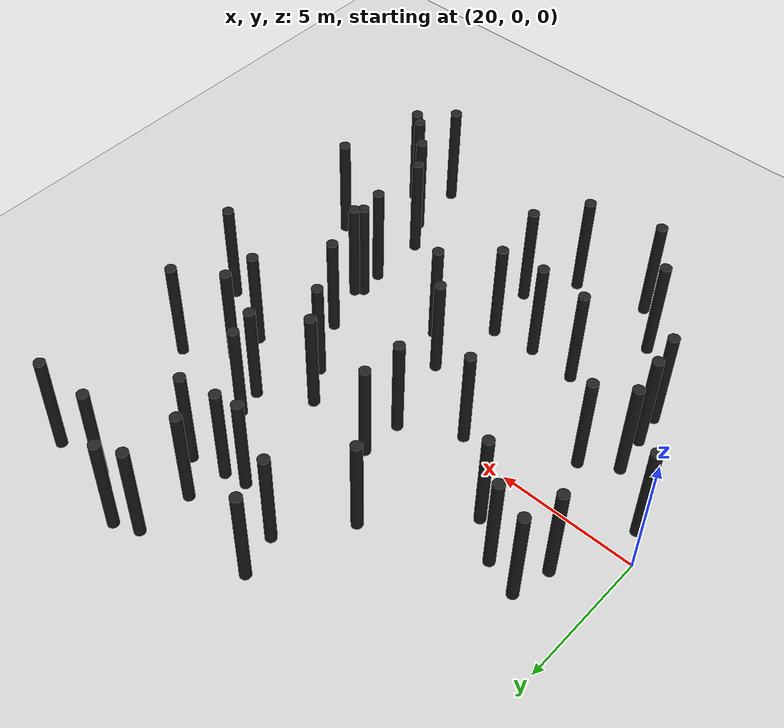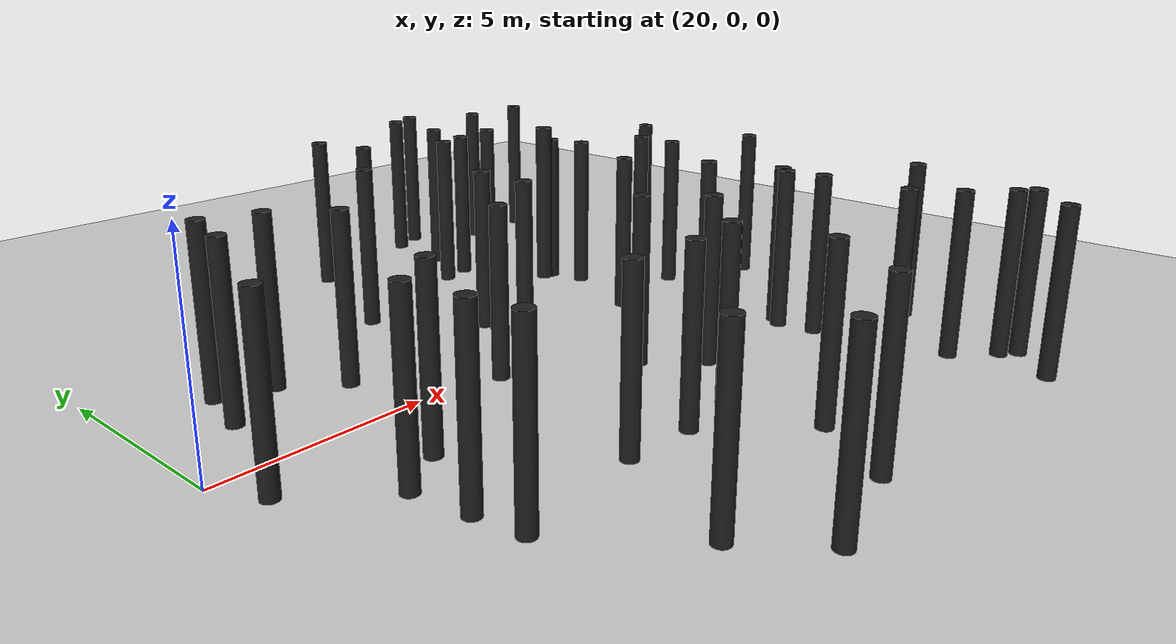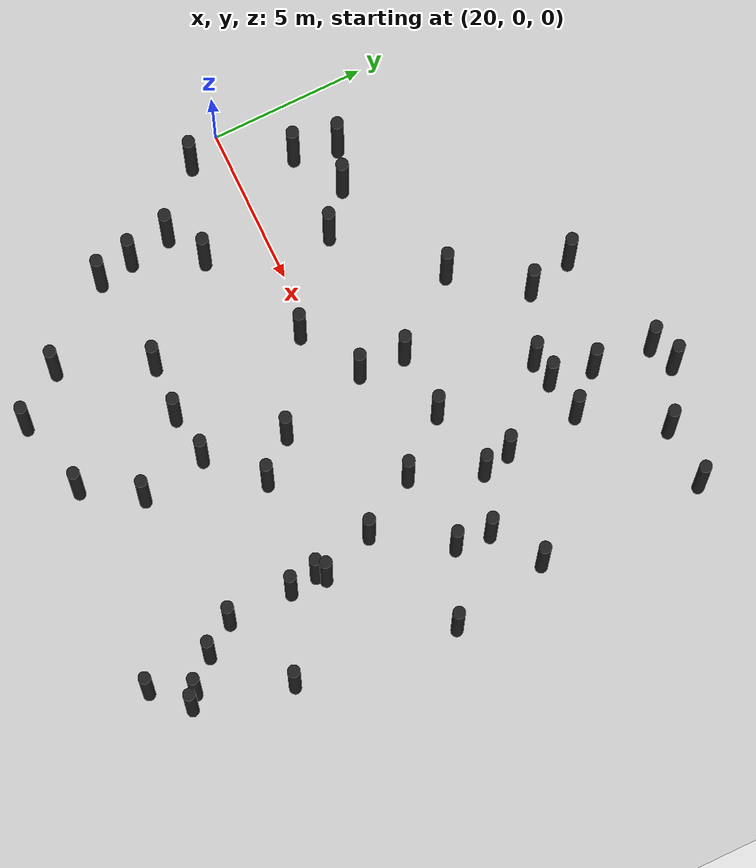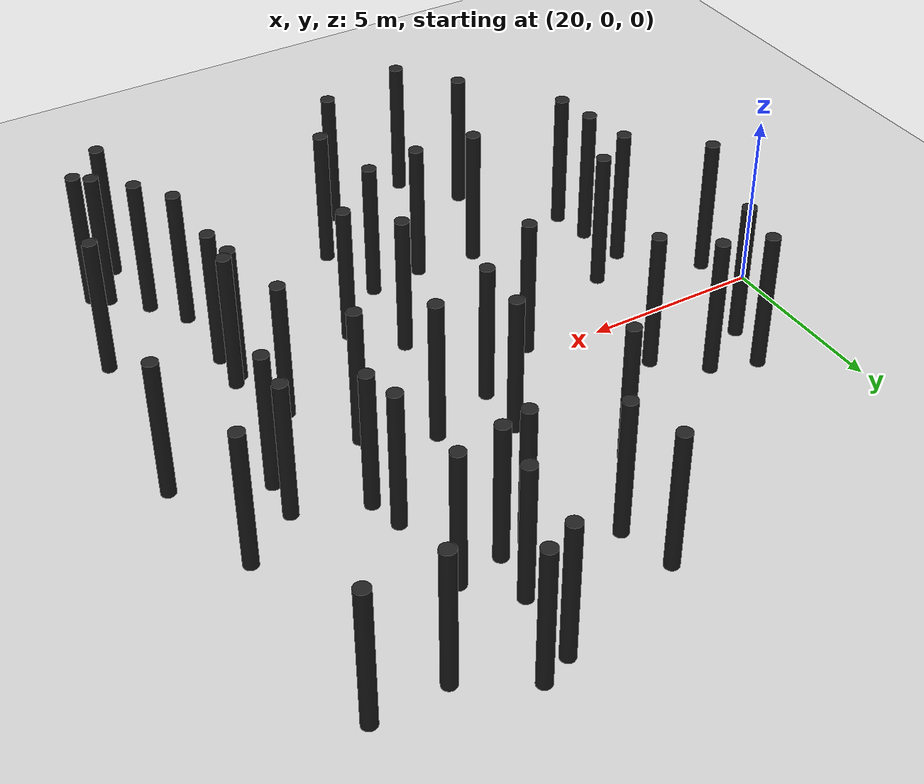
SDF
<sdf version="1.5">
 <world name="default">
  <model name="ground_plane">
   <static>1</static>
   <link name="link">
    <collision name="collision">
     <geometry><plane><normal>0 0 1</normal><size>200 200</size></plane></geometry>
     <surface><friction><ode><mu>100</mu><mu2>50</mu2></ode></friction></surface>
    </collision>
    <visual name="visual">
     <cast_shadows>0</cast_shadows>
     <geometry><plane><normal>0 0 1</normal><size>200 200</size></plane></geometry>
     <material>
      <script><uri>file://media/materials/scripts/gazebo.material</uri><name>Gazebo/Grey</name></script>
     </material>
    </visual>
   </link>
  </model>
  <model name="forest_clone_3">
   <pose>27.0172 -0.385433 0.000234 0 -0 0</pose>
   <static>1</static>
   <link name="cylinder::link">
    <inertial>
     <mass>1</mass>
     <inertia><ixx>0.083</ixx><ixy>0</ixy><ixz>0</ixz><iyy>0.083</iyy><iyz>0</iyz><izz>0.083</izz></inertia>
    </inertial>
    <collision name="collision">
     <geometry><cylinder><radius>0.2</radius><length>4</length></cylinder></geometry>
    </collision>
    <visual name="visual">
     <geometry><cylinder><radius>0.2</radius><length>4</length></cylinder></geometry>
     <material>
      <script><uri>file://media/materials/scripts/gazebo.material</uri><name>Gazebo/Black</name></script>
     </material>
    </visual>
    <pose>0 0 2 0 -0 0</pose>
   </link>
  </model>
  <model name="forest_clone_5">
   <pose>36.1798 -8.44092 -0.002637 0 -0 0</pose>
   <static>1</static>
   <link name="cylinder::link">
    <inertial>
     <mass>1</mass>
     <inertia><ixx>0.083</ixx><ixy>0</ixy><ixz>0</ixz><iyy>0.083</iyy><iyz>0</iyz><izz>0.083</izz></inertia>
    </inertial>
    <collision name="collision">
     <geometry><cylinder><radius>0.2</radius><length>4</length></cylinder></geometry>
    </collision>
    <visual name="visual">
     <geometry><cylinder><radius>0.2</radius><length>4</length></cylinder></geometry>
     <material>
      <script><uri>file://media/materials/scripts/gazebo.material</uri><name>Gazebo/Black</name></script>
     </material>
    </visual>
    <pose>0 0 2 0 -0 0</pose>
   </link>
  </model>
  <model name="forest_clone_7">
   <pose>37.4556 0.018661 -0.002282 0 -0 0</pose>
   <static>1</static>
   <link name="cylinder::link">
    <inertial>
     <mass>1</mass>
     <inertia><ixx>0.083</ixx><ixy>0</ixy><ixz>0</ixz><iyy>0.083</iyy><iyz>0</iyz><izz>0.083</izz></inertia>
    </inertial>
    <collision name="collision">
     <geometry><cylinder><radius>0.2</radius><length>4</length></cylinder></geometry>
    </collision>
    <visual name="visual">
     <geometry><cylinder><radius>0.2</radius><length>4</length></cylinder></geometry>
     <material>
      <script><uri>file://media/materials/scripts/gazebo.material</uri><name>Gazebo/Black</name></script>
     </material>
    </visual>
    <pose>0 0 2 0 -0 0</pose>
   </link>
  </model>
  <model name="forest_clone_11">
   <pose>34.0895 -3.20806 -0.003125 0 -0 0</pose>
   <static>1</static>
   <link name="cylinder::link">
    <inertial>
     <mass>1</mass>
     <inertia><ixx>0.083</ixx><ixy>0</ixy><ixz>0</ixz><iyy>0.083</iyy><iyz>0</iyz><izz>0.083</izz></inertia>
    </inertial>
    <collision name="collision">
     <geometry><cylinder><radius>0.2</radius><length>4</length></cylinder></geometry>
    </collision>
    <visual name="visual">
     <geometry><cylinder><radius>0.2</radius><length>4</length></cylinder></geometry>
     <material>
      <script><uri>file://media/materials/scripts/gazebo.material</uri><name>Gazebo/Black</name></script>
     </material>
    </visual>
    <pose>0 0 2 0 -0 0</pose>
   </link>
  </model>
  <model name="forest_clone_13">
   <pose>36.7887 3.25688 -0.000828 0 -0 0</pose>
   <static>1</static>
   <link name="cylinder::link">
    <inertial>
     <mass>1</mass>
     <inertia><ixx>0.083</ixx><ixy>0</ixy><ixz>0</ixz><iyy>0.083</iyy><iyz>0</iyz><izz>0.083</izz></inertia>
    </inertial>
    <collision name="collision">
     <geometry><cylinder><radius>0.2</radius><length>4</length></cylinder></geometry>
    </collision>
    <visual name="visual">
     <geometry><cylinder><radius>0.2</radius><length>4</length></cylinder></geometry>
     <material>
      <script><uri>file://media/materials/scripts/gazebo.material</uri><name>Gazebo/Black</name></script>
     </material>
    </visual>
    <pose>0 0 2 0 -0 0</pose>
   </link>
  </model>
  <model name="forest_clone_14">
   <pose>22.6307 -4.15857 -0.003113 0 -0 0</pose>
   <static>1</static>
   <link name="cylinder::link">
    <inertial>
     <mass>1</mass>
     <inertia><ixx>0.083</ixx><ixy>0</ixy><ixz>0</ixz><iyy>0.083</iyy><iyz>0</iyz><izz>0.083</izz></inertia>
    </inertial>
    <collision name="collision">
     <geometry><cylinder><radius>0.2</radius><length>4</length></cylinder></geometry>
    </collision>
    <visual name="visual">
     <geometry><cylinder><radius>0.2</radius><length>4</length></cylinder></geometry>
     <material>
      <script><uri>file://media/materials/scripts/gazebo.material</uri><name>Gazebo/Black</name></script>
     </material>
    </visual>
    <pose>0 0 2 0 -0 0</pose>
   </link>
  </model>
  <model name="forest_clone_16">
   <pose>29.0417 2.25112 0.003699 0 -0 0</pose>
   <static>1</static>
   <link name="cylinder::link">
    <inertial>
     <mass>1</mass>
     <inertia><ixx>0.083</ixx><ixy>0</ixy><ixz>0</ixz><iyy>0.083</iyy><iyz>0</iyz><izz>0.083</izz></inertia>
    </inertial>
    <collision name="collision">
     <geometry><cylinder><radius>0.2</radius><length>4</length></cylinder></geometry>
    </collision>
    <visual name="visual">
     <geometry><cylinder><radius>0.2</radius><length>4</length></cylinder></geometry>
     <material>
      <script><uri>file://media/materials/scripts/gazebo.material</uri><name>Gazebo/Black</name></script>
     </material>
    </visual>
    <pose>0 0 2 0 -0 0</pose>
   </link>
  </model>
  <model name="forest_clone_18">
   <pose>28.9567 0.748121 0.004364 0 -0 0</pose>
   <static>1</static>
   <link name="cylinder::link">
    <inertial>
     <mass>1</mass>
     <inertia><ixx>0.083</ixx><ixy>0</ixy><ixz>0</ixz><iyy>0.083</iyy><iyz>0</iyz><izz>0.083</izz></inertia>
    </inertial>
    <collision name="collision">
     <geometry><cylinder><radius>0.2</radius><length>4</length></cylinder></geometry>
    </collision>
    <visual name="visual">
     <geometry><cylinder><radius>0.2</radius><length>4</length></cylinder></geometry>
     <material>
      <script><uri>file://media/materials/scripts/gazebo.material</uri><name>Gazebo/Black</name></script>
     </material>
    </visual>
    <pose>0 0 2 0 -0 0</pose>
   </link>
  </model>
  <model name="forest_clone_21">
   <pose>27.7115 -5.01561 -0.001376 0 -0 0</pose>
   <static>1</static>
   <link name="cylinder::link">
    <inertial>
     <mass>1</mass>
     <inertia><ixx>0.083</ixx><ixy>0</ixy><ixz>0</ixz><iyy>0.083</iyy><iyz>0</iyz><izz>0.083</izz></inertia>
    </inertial>
    <collision name="collision">
     <geometry><cylinder><radius>0.2</radius><length>4</length></cylinder></geometry>
    </collision>
    <visual name="visual">
     <geometry><cylinder><radius>0.2</radius><length>4</length></cylinder></geometry>
     <material>
      <script><uri>file://media/materials/scripts/gazebo.material</uri><name>Gazebo/Black</name></script>
     </material>
    </visual>
    <pose>0 0 2 0 -0 0</pose>
   </link>
  </model>
  <model name="forest_clone_27">
   <pose>35.2688 2.22048 -0.003432 0 -0 0</pose>
   <static>1</static>
   <link name="cylinder::link">
    <inertial>
     <mass>1</mass>
     <inertia><ixx>0.083</ixx><ixy>0</ixy><ixz>0</ixz><iyy>0.083</iyy><iyz>0</iyz><izz>0.083</izz></inertia>
    </inertial>
    <collision name="collision">
     <geometry><cylinder><radius>0.2</radius><length>4</length></cylinder></geometry>
    </collision>
    <visual name="visual">
     <geometry><cylinder><radius>0.2</radius><length>4</length></cylinder></geometry>
     <material>
      <script><uri>file://media/materials/scripts/gazebo.material</uri><name>Gazebo/Black</name></script>
     </material>
    </visual>
    <pose>0 0 2 0 -0 0</pose>
   </link>
  </model>
  <model name="forest_clone_28">
   <pose>28.4963 -8.72486 -0.003639 0 -0 0</pose>
   <static>1</static>
   <link name="cylinder::link">
    <inertial>
     <mass>1</mass>
     <inertia><ixx>0.083</ixx><ixy>0</ixy><ixz>0</ixz><iyy>0.083</iyy><iyz>0</iyz><izz>0.083</izz></inertia>
    </inertial>
    <collision name="collision">
     <geometry><cylinder><radius>0.2</radius><length>4</length></cylinder></geometry>
    </collision>
    <visual name="visual">
     <geometry><cylinder><radius>0.2</radius><length>4</length></cylinder></geometry>
     <material>
      <script><uri>file://media/materials/scripts/gazebo.material</uri><name>Gazebo/Black</name></script>
     </material>
    </visual>
    <pose>0 0 2 0 -0 0</pose>
   </link>
  </model>
  <model name="forest_clone_30">
   <pose>35.1356 -9.4416 0.002527 0 -0 0</pose>
   <static>1</static>
   <link name="cylinder::link">
    <inertial>
     <mass>1</mass>
     <inertia><ixx>0.083</ixx><ixy>0</ixy><ixz>0</ixz><iyy>0.083</iyy><iyz>0</iyz><izz>0.083</izz></inertia>
    </inertial>
    <collision name="collision">
     <geometry><cylinder><radius>0.2</radius><length>4</length></cylinder></geometry>
    </collision>
    <visual name="visual">
     <geometry><cylinder><radius>0.2</radius><length>4</length></cylinder></geometry>
     <material>
      <script><uri>file://media/materials/scripts/gazebo.material</uri><name>Gazebo/Black</name></script>
     </material>
    </visual>
    <pose>0 0 2 0 -0 0</pose>
   </link>
  </model>
  <model name="forest_clone_31">
   <pose>32.5848 0.669089 -0.004582 0 -0 0</pose>
   <static>1</static>
   <link name="cylinder::link">
    <inertial>
     <mass>1</mass>
     <inertia><ixx>0.083</ixx><ixy>0</ixy><ixz>0</ixz><iyy>0.083</iyy><iyz>0</iyz><izz>0.083</izz></inertia>
    </inertial>
    <collision name="collision">
     <geometry><cylinder><radius>0.2</radius><length>4</length></cylinder></geometry>
    </collision>
    <visual name="visual">
     <geometry><cylinder><radius>0.2</radius><length>4</length></cylinder></geometry>
     <material>
      <script><uri>file://media/materials/scripts/gazebo.material</uri><name>Gazebo/Black</name></script>
     </material>
    </visual>
    <pose>0 0 2 0 -0 0</pose>
   </link>
  </model>
  <model name="forest_clone_34">
   <pose>36.6583 8.76226 0.004077 0 -0 0</pose>
   <static>1</static>
   <link name="cylinder::link">
    <inertial>
     <mass>1</mass>
     <inertia><ixx>0.083</ixx><ixy>0</ixy><ixz>0</ixz><iyy>0.083</iyy><iyz>0</iyz><izz>0.083</izz></inertia>
    </inertial>
    <collision name="collision">
     <geometry><cylinder><radius>0.2</radius><length>4</length></cylinder></geometry>
    </collision>
    <visual name="visual">
     <geometry><cylinder><radius>0.2</radius><length>4</length></cylinder></geometry>
     <material>
      <script><uri>file://media/materials/scripts/gazebo.material</uri><name>Gazebo/Black</name></script>
     </material>
    </visual>
    <pose>0 0 2 0 -0 0</pose>
   </link>
  </model>
  <model name="forest_clone_38">
   <pose>34.2289 -4.12915 0.002319 0 -0 0</pose>
   <static>1</static>
   <link name="cylinder::link">
    <inertial>
     <mass>1</mass>
     <inertia><ixx>0.083</ixx><ixy>0</ixy><ixz>0</ixz><iyy>0.083</iyy><iyz>0</iyz><izz>0.083</izz></inertia>
    </inertial>
    <collision name="collision">
     <geometry><cylinder><radius>0.2</radius><length>4</length></cylinder></geometry>
    </collision>
    <visual name="visual">
     <geometry><cylinder><radius>0.2</radius><length>4</length></cylinder></geometry>
     <material>
      <script><uri>file://media/materials/scripts/gazebo.material</uri><name>Gazebo/Black</name></script>
     </material>
    </visual>
    <pose>0 0 2 0 -0 0</pose>
   </link>
  </model>
  <model name="forest_clone_42">
   <pose>33.6852 -1.19974 -0.000456 0 -0 0</pose>
   <static>1</static>
   <link name="cylinder::link">
    <inertial>
     <mass>1</mass>
     <inertia><ixx>0.083</ixx><ixy>0</ixy><ixz>0</ixz><iyy>0.083</iyy><iyz>0</iyz><izz>0.083</izz></inertia>
    </inertial>
    <collision name="collision">
     <geometry><cylinder><radius>0.2</radius><length>4</length></cylinder></geometry>
    </collision>
    <visual name="visual">
     <geometry><cylinder><radius>0.2</radius><length>4</length></cylinder></geometry>
     <material>
      <script><uri>file://media/materials/scripts/gazebo.material</uri><name>Gazebo/Black</name></script>
     </material>
    </visual>
    <pose>0 0 2 0 -0 0</pose>
   </link>
  </model>
  <model name="forest_clone_53">
   <pose>31.286 2.29813 0.756441 0 -0 0</pose>
   <static>1</static>
   <link name="cylinder::link">
    <inertial>
     <mass>1</mass>
     <inertia><ixx>0.083</ixx><ixy>0</ixy><ixz>0</ixz><iyy>0.083</iyy><iyz>0</iyz><izz>0.083</izz></inertia>
    </inertial>
    <collision name="collision">
     <geometry><cylinder><radius>0.2</radius><length>4</length></cylinder></geometry>
    </collision>
    <visual name="visual">
     <geometry><cylinder><radius>0.2</radius><length>4</length></cylinder></geometry>
     <material>
      <script><uri>file://media/materials/scripts/gazebo.material</uri><name>Gazebo/Black</name></script>
     </material>
    </visual>
    <pose>0 0 2 0 -0 0</pose>
   </link>
  </model>
  <model name="forest_clone_56">
   <pose>22.0934 3.26191 0.00056 0 -0 0</pose>
   <static>1</static>
   <link name="cylinder::link">
    <inertial>
     <mass>1</mass>
     <inertia><ixx>0.083</ixx><ixy>0</ixy><ixz>0</ixz><iyy>0.083</iyy><iyz>0</iyz><izz>0.083</izz></inertia>
    </inertial>
    <collision name="collision">
     <geometry><cylinder><radius>0.2</radius><length>4</length></cylinder></geometry>
    </collision>
    <visual name="visual">
     <geometry><cylinder><radius>0.2</radius><length>4</length></cylinder></geometry>
     <material>
      <script><uri>file://media/materials/scripts/gazebo.material</uri><name>Gazebo/Black</name></script>
     </material>
    </visual>
    <pose>0 0 2 0 -0 0</pose>
   </link>
  </model>
  <model name="forest_clone_57">
   <pose>34.3083 -2.96168 0.001023 0 -0 0</pose>
   <static>1</static>
   <link name="cylinder::link">
    <inertial>
     <mass>1</mass>
     <inertia><ixx>0.083</ixx><ixy>0</ixy><ixz>0</ixz><iyy>0.083</iyy><iyz>0</iyz><izz>0.083</izz></inertia>
    </inertial>
    <collision name="collision">
     <geometry><cylinder><radius>0.2</radius><length>4</length></cylinder></geometry>
    </collision>
    <visual name="visual">
     <geometry><cylinder><radius>0.2</radius><length>4</length></cylinder></geometry>
     <material>
      <script><uri>file://media/materials/scripts/gazebo.material</uri><name>Gazebo/Black</name></script>
     </material>
    </visual>
    <pose>0 0 2 0 -0 0</pose>
   </link>
  </model>
  <model name="forest_clone_59">
   <pose>32.101 9.32027 0.000197 0 -0 0</pose>
   <static>1</static>
   <link name="cylinder::link">
    <inertial>
     <mass>1</mass>
     <inertia><ixx>0.083</ixx><ixy>0</ixy><ixz>0</ixz><iyy>0.083</iyy><iyz>0</iyz><izz>0.083</izz></inertia>
    </inertial>
    <collision name="collision">
     <geometry><cylinder><radius>0.2</radius><length>4</length></cylinder></geometry>
    </collision>
    <visual name="visual">
     <geometry><cylinder><radius>0.2</radius><length>4</length></cylinder></geometry>
     <material>
      <script><uri>file://media/materials/scripts/gazebo.material</uri><name>Gazebo/Black</name></script>
     </material>
    </visual>
    <pose>0 0 2 0 -0 0</pose>
   </link>
  </model>
  <model name="forest_clone_76">
   <pose>34.6908 8.67813 -0.001923 0 -0 0</pose>
   <static>1</static>
   <link name="cylinder::link">
    <inertial>
     <mass>1</mass>
     <inertia><ixx>0.083</ixx><ixy>0</ixy><ixz>0</ixz><iyy>0.083</iyy><iyz>0</iyz><izz>0.083</izz></inertia>
    </inertial>
    <collision name="collision">
     <geometry><cylinder><radius>0.2</radius><length>4</length></cylinder></geometry>
    </collision>
    <visual name="visual">
     <geometry><cylinder><radius>0.2</radius><length>4</length></cylinder></geometry>
     <material>
      <script><uri>file://media/materials/scripts/gazebo.material</uri><name>Gazebo/Black</name></script>
     </material>
    </visual>
    <pose>0 0 2 0 -0 0</pose>
   </link>
  </model>
  <model name="forest_clone_78">
   <pose>36.9069 -5.275 0.004699 0 -0 0</pose>
   <static>1</static>
   <link name="cylinder::link">
    <inertial>
     <mass>1</mass>
     <inertia><ixx>0.083</ixx><ixy>0</ixy><ixz>0</ixz><iyy>0.083</iyy><iyz>0</iyz><izz>0.083</izz></inertia>
    </inertial>
    <collision name="collision">
     <geometry><cylinder><radius>0.2</radius><length>4</length></cylinder></geometry>
    </collision>
    <visual name="visual">
     <geometry><cylinder><radius>0.2</radius><length>4</length></cylinder></geometry>
     <material>
      <script><uri>file://media/materials/scripts/gazebo.material</uri><name>Gazebo/Black</name></script>
     </material>
    </visual>
    <pose>0 0 2 0 -0 0</pose>
   </link>
  </model>
  <model name="forest_clone_79">
   <pose>21.7627 1.88539 0.004949 0 -0 0</pose>
   <static>1</static>
   <link name="cylinder::link">
    <inertial>
     <mass>1</mass>
     <inertia><ixx>0.083</ixx><ixy>0</ixy><ixz>0</ixz><iyy>0.083</iyy><iyz>0</iyz><izz>0.083</izz></inertia>
    </inertial>
    <collision name="collision">
     <geometry><cylinder><radius>0.2</radius><length>4</length></cylinder></geometry>
    </collision>
    <visual name="visual">
     <geometry><cylinder><radius>0.2</radius><length>4</length></cylinder></geometry>
     <material>
      <script><uri>file://media/materials/scripts/gazebo.material</uri><name>Gazebo/Black</name></script>
     </material>
    </visual>
    <pose>0 0 2 0 -0 0</pose>
   </link>
  </model>
  <model name="forest_clone_84">
   <pose>32.9401 9.6855 -0.004697 0 -0 0</pose>
   <static>1</static>
   <link name="cylinder::link">
    <inertial>
     <mass>1</mass>
     <inertia><ixx>0.083</ixx><ixy>0</ixy><ixz>0</ixz><iyy>0.083</iyy><iyz>0</iyz><izz>0.083</izz></inertia>
    </inertial>
    <collision name="collision">
     <geometry><cylinder><radius>0.2</radius><length>4</length></cylinder></geometry>
    </collision>
    <visual name="visual">
     <geometry><cylinder><radius>0.2</radius><length>4</length></cylinder></geometry>
     <material>
      <script><uri>file://media/materials/scripts/gazebo.material</uri><name>Gazebo/Black</name></script>
     </material>
    </visual>
    <pose>0 0 2 0 -0 0</pose>
   </link>
  </model>
  <model name="forest_clone_85">
   <pose>23.34 2.83419 0.002213 0 -0 0</pose>
   <static>1</static>
   <link name="cylinder::link">
    <inertial>
     <mass>1</mass>
     <inertia><ixx>0.083</ixx><ixy>0</ixy><ixz>0</ixz><iyy>0.083</iyy><iyz>0</iyz><izz>0.083</izz></inertia>
    </inertial>
    <collision name="collision">
     <geometry><cylinder><radius>0.2</radius><length>4</length></cylinder></geometry>
    </collision>
    <visual name="visual">
     <geometry><cylinder><radius>0.2</radius><length>4</length></cylinder></geometry>
     <material>
      <script><uri>file://media/materials/scripts/gazebo.material</uri><name>Gazebo/Black</name></script>
     </material>
    </visual>
    <pose>0 0 2 0 -0 0</pose>
   </link>
  </model>
  <model name="forest_clone_87">
   <pose>31.9507 7.38285 0.002783 0 -0 0</pose>
   <static>1</static>
   <link name="cylinder::link">
    <inertial>
     <mass>1</mass>
     <inertia><ixx>0.083</ixx><ixy>0</ixy><ixz>0</ixz><iyy>0.083</iyy><iyz>0</iyz><izz>0.083</izz></inertia>
    </inertial>
    <collision name="collision">
     <geometry><cylinder><radius>0.2</radius><length>4</length></cylinder></geometry>
    </collision>
    <visual name="visual">
     <geometry><cylinder><radius>0.2</radius><length>4</length></cylinder></geometry>
     <material>
      <script><uri>file://media/materials/scripts/gazebo.material</uri><name>Gazebo/Black</name></script>
     </material>
    </visual>
    <pose>0 0 2 0 -0 0</pose>
   </link>
  </model>
  <model name="forest_clone_88">
   <pose>29.7357 -2.1477 -0.003877 0 -0 0</pose>
   <static>1</static>
   <link name="cylinder::link">
    <inertial>
     <mass>1</mass>
     <inertia><ixx>0.083</ixx><ixy>0</ixy><ixz>0</ixz><iyy>0.083</iyy><iyz>0</iyz><izz>0.083</izz></inertia>
    </inertial>
    <collision name="collision">
     <geometry><cylinder><radius>0.2</radius><length>4</length></cylinder></geometry>
    </collision>
    <visual name="visual">
     <geometry><cylinder><radius>0.2</radius><length>4</length></cylinder></geometry>
     <material>
      <script><uri>file://media/materials/scripts/gazebo.material</uri><name>Gazebo/Black</name></script>
     </material>
    </visual>
    <pose>0 0 2 0 -0 0</pose>
   </link>
  </model>
  <model name="forest_clone_89">
   <pose>33.2217 3.82896 -0.003362 0 -0 0</pose>
   <static>1</static>
   <link name="cylinder::link">
    <inertial>
     <mass>1</mass>
     <inertia><ixx>0.083</ixx><ixy>0</ixy><ixz>0</ixz><iyy>0.083</iyy><iyz>0</iyz><izz>0.083</izz></inertia>
    </inertial>
    <collision name="collision">
     <geometry><cylinder><radius>0.2</radius><length>4</length></cylinder></geometry>
    </collision>
    <visual name="visual">
     <geometry><cylinder><radius>0.2</radius><length>4</length></cylinder></geometry>
     <material>
      <script><uri>file://media/materials/scripts/gazebo.material</uri><name>Gazebo/Black</name></script>
     </material>
    </visual>
    <pose>0 0 2 0 -0 0</pose>
   </link>
  </model>
  <model name="forest_clone_90">
   <pose>22.4155 -2.78891 -0.001223 0 -0 0</pose>
   <static>1</static>
   <link name="cylinder::link">
    <inertial>
     <mass>1</mass>
     <inertia><ixx>0.083</ixx><ixy>0</ixy><ixz>0</ixz><iyy>0.083</iyy><iyz>0</iyz><izz>0.083</izz></inertia>
    </inertial>
    <collision name="collision">
     <geometry><cylinder><radius>0.2</radius><length>4</length></cylinder></geometry>
    </collision>
    <visual name="visual">
     <geometry><cylinder><radius>0.2</radius><length>4</length></cylinder></geometry>
     <material>
      <script><uri>file://media/materials/scripts/gazebo.material</uri><name>Gazebo/Black</name></script>
     </material>
    </visual>
    <pose>0 0 2 0 -0 0</pose>
   </link>
  </model>
  <model name="forest_clone_91">
   <pose>34.26 -6.25528 0.000729 0 -0 0</pose>
   <static>1</static>
   <link name="cylinder::link">
    <inertial>
     <mass>1</mass>
     <inertia><ixx>0.083</ixx><ixy>0</ixy><ixz>0</ixz><iyy>0.083</iyy><iyz>0</iyz><izz>0.083</izz></inertia>
    </inertial>
    <collision name="collision">
     <geometry><cylinder><radius>0.2</radius><length>4</length></cylinder></geometry>
    </collision>
    <visual name="visual">
     <geometry><cylinder><radius>0.2</radius><length>4</length></cylinder></geometry>
     <material>
      <script><uri>file://media/materials/scripts/gazebo.material</uri><name>Gazebo/Black</name></script>
     </material>
    </visual>
    <pose>0 0 2 0 -0 0</pose>
   </link>
  </model>
  <model name="forest_clone_92">
   <pose>24.7666 -7.77799 0.003622 0 -0 0</pose>
   <static>1</static>
   <link name="cylinder::link">
    <inertial>
     <mass>1</mass>
     <inertia><ixx>0.083</ixx><ixy>0</ixy><ixz>0</ixz><iyy>0.083</iyy><iyz>0</iyz><izz>0.083</izz></inertia>
    </inertial>
    <collision name="collision">
     <geometry><cylinder><radius>0.2</radius><length>4</length></cylinder></geometry>
    </collision>
    <visual name="visual">
     <geometry><cylinder><radius>0.2</radius><length>4</length></cylinder></geometry>
     <material>
      <script><uri>file://media/materials/scripts/gazebo.material</uri><name>Gazebo/Black</name></script>
     </material>
    </visual>
    <pose>0 0 2 0 -0 0</pose>
   </link>
  </model>
  <model name="forest_clone_94">
   <pose>28.5145 8.20234 -0.00382 0 -0 0</pose>
   <static>1</static>
   <link name="cylinder::link">
    <inertial>
     <mass>1</mass>
     <inertia><ixx>0.083</ixx><ixy>0</ixy><ixz>0</ixz><iyy>0.083</iyy><iyz>0</iyz><izz>0.083</izz></inertia>
    </inertial>
    <collision name="collision">
     <geometry><cylinder><radius>0.2</radius><length>4</length></cylinder></geometry>
    </collision>
    <visual name="visual">
     <geometry><cylinder><radius>0.2</radius><length>4</length></cylinder></geometry>
     <material>
      <script><uri>file://media/materials/scripts/gazebo.material</uri><name>Gazebo/Black</name></script>
     </material>
    </visual>
    <pose>0 0 2 0 -0 0</pose>
   </link>
  </model>
  <model name="forest_clone_95">
   <pose>29.6199 -6.97338 0.004004 0 -0 0</pose>
   <static>1</static>
   <link name="cylinder::link">
    <inertial>
     <mass>1</mass>
     <inertia><ixx>0.083</ixx><ixy>0</ixy><ixz>0</ixz><iyy>0.083</iyy><iyz>0</iyz><izz>0.083</izz></inertia>
    </inertial>
    <collision name="collision">
     <geometry><cylinder><radius>0.2</radius><length>4</length></cylinder></geometry>
    </collision>
    <visual name="visual">
     <geometry><cylinder><radius>0.2</radius><length>4</length></cylinder></geometry>
     <material>
      <script><uri>file://media/materials/scripts/gazebo.material</uri><name>Gazebo/Black</name></script>
     </material>
    </visual>
    <pose>0 0 2 0 -0 0</pose>
   </link>
  </model>
  <model name="forest_clone_100">
   <pose>27.2637 4.554 -0.00311 0 -0 0</pose>
   <static>1</static>
   <link name="cylinder::link">
    <inertial>
     <mass>1</mass>
     <inertia><ixx>0.083</ixx><ixy>0</ixy><ixz>0</ixz><iyy>0.083</iyy><iyz>0</iyz><izz>0.083</izz></inertia>
    </inertial>
    <collision name="collision">
     <geometry><cylinder><radius>0.2</radius><length>4</length></cylinder></geometry>
    </collision>
    <visual name="visual">
     <geometry><cylinder><radius>0.2</radius><length>4</length></cylinder></geometry>
     <material>
      <script><uri>file://media/materials/scripts/gazebo.material</uri><name>Gazebo/Black</name></script>
     </material>
    </visual>
    <pose>0 0 2 0 -0 0</pose>
   </link>
  </model>
  <model name="forest_clone_102">
   <pose>35.1831 1.0716 0.004777 0 -0 0</pose>
   <static>1</static>
   <link name="cylinder::link">
    <inertial>
     <mass>1</mass>
     <inertia><ixx>0.083</ixx><ixy>0</ixy><ixz>0</ixz><iyy>0.083</iyy><iyz>0</iyz><izz>0.083</izz></inertia>
    </inertial>
    <collision name="collision">
     <geometry><cylinder><radius>0.2</radius><length>4</length></cylinder></geometry>
    </collision>
    <visual name="visual">
     <geometry><cylinder><radius>0.2</radius><length>4</length></cylinder></geometry>
     <material>
      <script><uri>file://media/materials/scripts/gazebo.material</uri><name>Gazebo/Black</name></script>
     </material>
    </visual>
    <pose>0 0 2 0 -0 0</pose>
   </link>
  </model>
  <model name="forest_clone_103">
   <pose>33.4479 2.9024 -0.00032 0 -0 0</pose>
   <static>1</static>
   <link name="cylinder::link">
    <inertial>
     <mass>1</mass>
     <inertia><ixx>0.083</ixx><ixy>0</ixy><ixz>0</ixz><iyy>0.083</iyy><iyz>0</iyz><izz>0.083</izz></inertia>
    </inertial>
    <collision name="collision">
     <geometry><cylinder><radius>0.2</radius><length>4</length></cylinder></geometry>
    </collision>
    <visual name="visual">
     <geometry><cylinder><radius>0.2</radius><length>4</length></cylinder></geometry>
     <material>
      <script><uri>file://media/materials/scripts/gazebo.material</uri><name>Gazebo/Black</name></script>
     </material>
    </visual>
    <pose>0 0 2 0 -0 0</pose>
   </link>
  </model>
  <model name="forest_clone_108">
   <pose>33.0299 6.25662 0.001061 0 -0 0</pose>
   <static>1</static>
   <link name="cylinder::link">
    <inertial>
     <mass>1</mass>
     <inertia><ixx>0.083</ixx><ixy>0</ixy><ixz>0</ixz><iyy>0.083</iyy><iyz>0</iyz><izz>0.083</izz></inertia>
    </inertial>
    <collision name="collision">
     <geometry><cylinder><radius>0.2</radius><length>4</length></cylinder></geometry>
    </collision>
    <visual name="visual">
     <geometry><cylinder><radius>0.2</radius><length>4</length></cylinder></geometry>
     <material>
      <script><uri>file://media/materials/scripts/gazebo.material</uri><name>Gazebo/Black</name></script>
     </material>
    </visual>
    <pose>0 0 2 0 -0 0</pose>
   </link>
  </model>
  <model name="forest_clone_111">
   <pose>30.8174 -3.31616 -6.5e-05 0 -0 0</pose>
   <static>1</static>
   <link name="cylinder::link">
    <inertial>
     <mass>1</mass>
     <inertia><ixx>0.083</ixx><ixy>0</ixy><ixz>0</ixz><iyy>0.083</iyy><iyz>0</iyz><izz>0.083</izz></inertia>
    </inertial>
    <collision name="collision">
     <geometry><cylinder><radius>0.2</radius><length>4</length></cylinder></geometry>
    </collision>
    <visual name="visual">
     <geometry><cylinder><radius>0.2</radius><length>4</length></cylinder></geometry>
     <material>
      <script><uri>file://media/materials/scripts/gazebo.material</uri><name>Gazebo/Black</name></script>
     </material>
    </visual>
    <pose>0 0 2 0 -0 0</pose>
   </link>
  </model>
  <model name="forest_clone_114">
   <pose>24.544 1.79827 0.002115 0 -0 0</pose>
   <static>1</static>
   <link name="cylinder::link">
    <inertial>
     <mass>1</mass>
     <inertia><ixx>0.083</ixx><ixy>0</ixy><ixz>0</ixz><iyy>0.083</iyy><iyz>0</iyz><izz>0.083</izz></inertia>
    </inertial>
    <collision name="collision">
     <geometry><cylinder><radius>0.2</radius><length>4</length></cylinder></geometry>
    </collision>
    <visual name="visual">
     <geometry><cylinder><radius>0.2</radius><length>4</length></cylinder></geometry>
     <material>
      <script><uri>file://media/materials/scripts/gazebo.material</uri><name>Gazebo/Black</name></script>
     </material>
    </visual>
    <pose>0 0 2 0 -0 0</pose>
   </link>
  </model>
  <model name="forest_clone_116">
   <pose>25.977 -4.89842 0.000467 0 -0 0</pose>
   <static>1</static>
   <link name="cylinder::link">
    <inertial>
     <mass>1</mass>
     <inertia><ixx>0.083</ixx><ixy>0</ixy><ixz>0</ixz><iyy>0.083</iyy><iyz>0</iyz><izz>0.083</izz></inertia>
    </inertial>
    <collision name="collision">
     <geometry><cylinder><radius>0.2</radius><length>4</length></cylinder></geometry>
    </collision>
    <visual name="visual">
     <geometry><cylinder><radius>0.2</radius><length>4</length></cylinder></geometry>
     <material>
      <script><uri>file://media/materials/scripts/gazebo.material</uri><name>Gazebo/Black</name></script>
     </material>
    </visual>
    <pose>0 0 2 0 -0 0</pose>
   </link>
  </model>
  <model name="forest_clone_119">
   <pose>23.5902 -2.05856 -0.000462 0 -0 0</pose>
   <static>1</static>
   <link name="cylinder::link">
    <inertial>
     <mass>1</mass>
     <inertia><ixx>0.083</ixx><ixy>0</ixy><ixz>0</ixz><iyy>0.083</iyy><iyz>0</iyz><izz>0.083</izz></inertia>
    </inertial>
    <collision name="collision">
     <geometry><cylinder><radius>0.2</radius><length>4</length></cylinder></geometry>
    </collision>
    <visual name="visual">
     <geometry><cylinder><radius>0.2</radius><length>4</length></cylinder></geometry>
     <material>
      <script><uri>file://media/materials/scripts/gazebo.material</uri><name>Gazebo/Black</name></script>
     </material>
    </visual>
    <pose>0 0 2 0 -0 0</pose>
   </link>
  </model>
  <model name="forest_clone_124">
   <pose>20.6406 -1.12972 -0.00265 0 -0 0</pose>
   <static>1</static>
   <link name="cylinder::link">
    <inertial>
     <mass>1</mass>
     <inertia><ixx>0.083</ixx><ixy>0</ixy><ixz>0</ixz><iyy>0.083</iyy><iyz>0</iyz><izz>0.083</izz></inertia>
    </inertial>
    <collision name="collision">
     <geometry><cylinder><radius>0.2</radius><length>4</length></cylinder></geometry>
    </collision>
    <visual name="visual">
     <geometry><cylinder><radius>0.2</radius><length>4</length></cylinder></geometry>
     <material>
      <script><uri>file://media/materials/scripts/gazebo.material</uri><name>Gazebo/Black</name></script>
     </material>
    </visual>
    <pose>0 0 2 0 -0 0</pose>
   </link>
  </model>
  <model name="forest_clone_125">
   <pose>30.96 5.82273 -0.000997 0 -0 0</pose>
   <static>1</static>
   <link name="cylinder::link">
    <inertial>
     <mass>1</mass>
     <inertia><ixx>0.083</ixx><ixy>0</ixy><ixz>0</ixz><iyy>0.083</iyy><iyz>0</iyz><izz>0.083</izz></inertia>
    </inertial>
    <collision name="collision">
     <geometry><cylinder><radius>0.2</radius><length>4</length></cylinder></geometry>
    </collision>
    <visual name="visual">
     <geometry><cylinder><radius>0.2</radius><length>4</length></cylinder></geometry>
     <material>
      <script><uri>file://media/materials/scripts/gazebo.material</uri><name>Gazebo/Black</name></script>
     </material>
    </visual>
    <pose>0 0 2 0 -0 0</pose>
   </link>
  </model>
  <model name="forest_clone_127">
   <pose>31.7444 5.98829 0.000975 0 -0 0</pose>
   <static>1</static>
   <link name="cylinder::link">
    <inertial>
     <mass>1</mass>
     <inertia><ixx>0.083</ixx><ixy>0</ixy><ixz>0</ixz><iyy>0.083</iyy><iyz>0</iyz><izz>0.083</izz></inertia>
    </inertial>
    <collision name="collision">
     <geometry><cylinder><radius>0.2</radius><length>4</length></cylinder></geometry>
    </collision>
    <visual name="visual">
     <geometry><cylinder><radius>0.2</radius><length>4</length></cylinder></geometry>
     <material>
      <script><uri>file://media/materials/scripts/gazebo.material</uri><name>Gazebo/Black</name></script>
     </material>
    </visual>
    <pose>0 0 2 0 -0 0</pose>
   </link>
  </model>
  <model name="forest_clone_128">
   <pose>25.9613 -9.328 -0.000212 0 -0 0</pose>
   <static>1</static>
   <link name="cylinder::link">
    <inertial>
     <mass>1</mass>
     <inertia><ixx>0.083</ixx><ixy>0</ixy><ixz>0</ixz><iyy>0.083</iyy><iyz>0</iyz><izz>0.083</izz></inertia>
    </inertial>
    <collision name="collision">
     <geometry><cylinder><radius>0.2</radius><length>4</length></cylinder></geometry>
    </collision>
    <visual name="visual">
     <geometry><cylinder><radius>0.2</radius><length>4</length></cylinder></geometry>
     <material>
      <script><uri>file://media/materials/scripts/gazebo.material</uri><name>Gazebo/Black</name></script>
     </material>
    </visual>
    <pose>0 0 2 0 -0 0</pose>
   </link>
  </model>
  <model name="forest_clone_134">
   <pose>35.7906 -8.1319 0.004323 0 -0 0</pose>
   <static>1</static>
   <link name="cylinder::link">
    <inertial>
     <mass>1</mass>
     <inertia><ixx>0.083</ixx><ixy>0</ixy><ixz>0</ixz><iyy>0.083</iyy><iyz>0</iyz><izz>0.083</izz></inertia>
    </inertial>
    <collision name="collision">
     <geometry><cylinder><radius>0.2</radius><length>4</length></cylinder></geometry>
    </collision>
    <visual name="visual">
     <geometry><cylinder><radius>0.2</radius><length>4</length></cylinder></geometry>
     <material>
      <script><uri>file://media/materials/scripts/gazebo.material</uri><name>Gazebo/Black</name></script>
     </material>
    </visual>
    <pose>0 0 2 0 -0 0</pose>
   </link>
  </model>
  <model name="forest_clone_138">
   <pose>34.9436 -7.26232 0.000457 0 -0 0</pose>
   <static>1</static>
   <link name="cylinder::link">
    <inertial>
     <mass>1</mass>
     <inertia><ixx>0.083</ixx><ixy>0</ixy><ixz>0</ixz><iyy>0.083</iyy><iyz>0</iyz><izz>0.083</izz></inertia>
    </inertial>
    <collision name="collision">
     <geometry><cylinder><radius>0.2</radius><length>4</length></cylinder></geometry>
    </collision>
    <visual name="visual">
     <geometry><cylinder><radius>0.2</radius><length>4</length></cylinder></geometry>
     <material>
      <script><uri>file://media/materials/scripts/gazebo.material</uri><name>Gazebo/Black</name></script>
     </material>
    </visual>
    <pose>0 0 2 0 -0 0</pose>
   </link>
  </model>
  <model name="forest_clone_142">
   <pose>29.258 -4.81854 -0.002463 0 -0 0</pose>
   <static>1</static>
   <link name="cylinder::link">
    <inertial>
     <mass>1</mass>
     <inertia><ixx>0.083</ixx><ixy>0</ixy><ixz>0</ixz><iyy>0.083</iyy><iyz>0</iyz><izz>0.083</izz></inertia>
    </inertial>
    <collision name="collision">
     <geometry><cylinder><radius>0.2</radius><length>4</length></cylinder></geometry>
    </collision>
    <visual name="visual">
     <geometry><cylinder><radius>0.2</radius><length>4</length></cylinder></geometry>
     <material>
      <script><uri>file://media/materials/scripts/gazebo.material</uri><name>Gazebo/Black</name></script>
     </material>
    </visual>
    <pose>0 0 2 0 -0 0</pose>
   </link>
  </model>
  <model name="forest_clone_145">
   <pose>22.8095 -5.28759 0.001589 0 -0 0</pose>
   <static>1</static>
   <link name="cylinder::link">
    <inertial>
     <mass>1</mass>
     <inertia><ixx>0.083</ixx><ixy>0</ixy><ixz>0</ixz><iyy>0.083</iyy><iyz>0</iyz><izz>0.083</izz></inertia>
    </inertial>
    <collision name="collision">
     <geometry><cylinder><radius>0.2</radius><length>4</length></cylinder></geometry>
    </collision>
    <visual name="visual">
     <geometry><cylinder><radius>0.2</radius><length>4</length></cylinder></geometry>
     <material>
      <script><uri>file://media/materials/scripts/gazebo.material</uri><name>Gazebo/Black</name></script>
     </material>
    </visual>
    <pose>0 0 2 0 -0 0</pose>
   </link>
  </model>
  <model name="forest_clone_146">
   <pose>28.898 6.72848 0.000402 0 -0 0</pose>
   <static>1</static>
   <link name="cylinder::link">
    <inertial>
     <mass>1</mass>
     <inertia><ixx>0.083</ixx><ixy>0</ixy><ixz>0</ixz><iyy>0.083</iyy><iyz>0</iyz><izz>0.083</izz></inertia>
    </inertial>
    <collision name="collision">
     <geometry><cylinder><radius>0.2</radius><length>4</length></cylinder></geometry>
    </collision>
    <visual name="visual">
     <geometry><cylinder><radius>0.2</radius><length>4</length></cylinder></geometry>
     <material>
      <script><uri>file://media/materials/scripts/gazebo.material</uri><name>Gazebo/Black</name></script>
     </material>
    </visual>
    <pose>0 0 2 0 -0 0</pose>
   </link>
  </model>
 </world>
</sdf>
